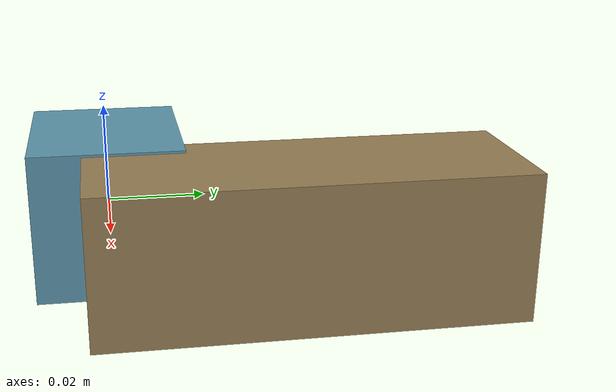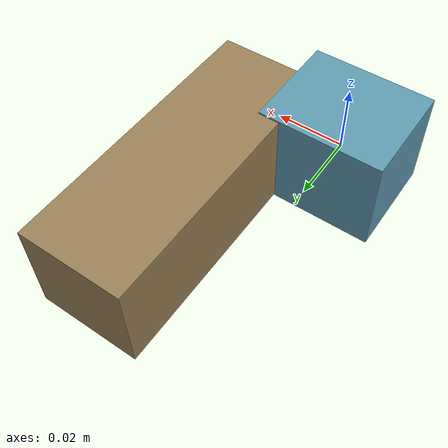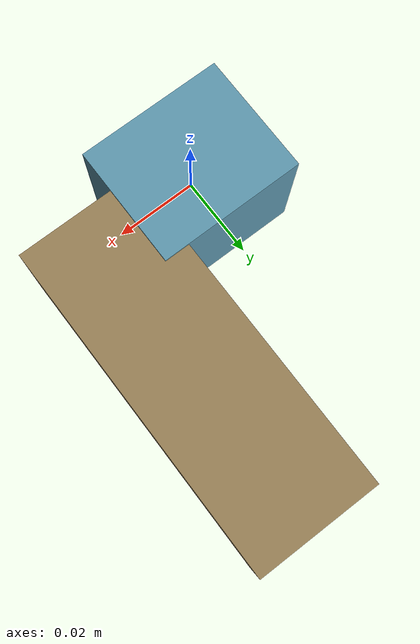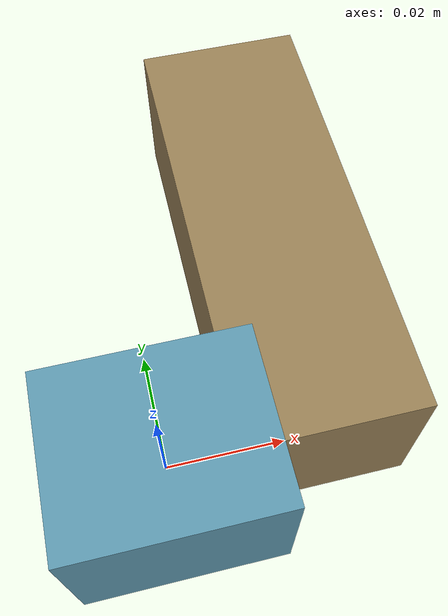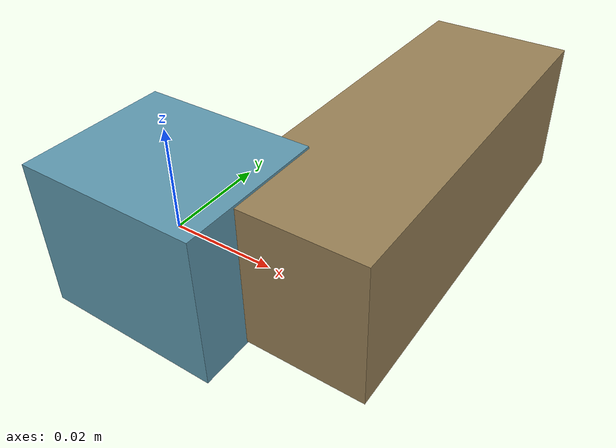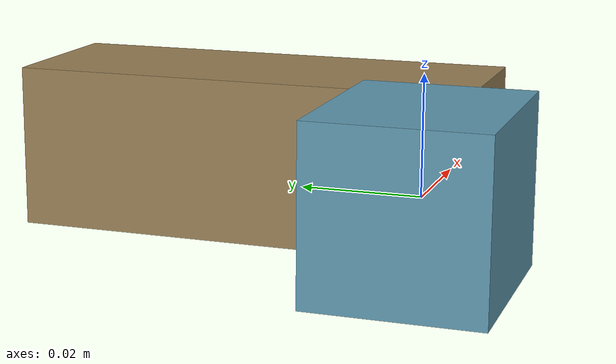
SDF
<sdf version="1.4"><world name="default"><model name="object0"><link name="link1"><pose>0 0 0 0 0 0</pose><inertial><pose>0 0 0 0 0 0</pose><mass>0.0193829483688589</mass><inertia><ixx>2.9074422553288347e-06</ixx><ixy>0</ixy><iyy>3.5348105942499667e-06</iyy><ixz>0</ixz><iyz>0</iyz><izz>3.5348105942499667e-06</izz></inertia></inertial><visual name="link1_visual"><pose>0 0  0 0 0 0</pose><geometry><box><size>0.03589434883122018 0.03 0.03</size></box></geometry><material><diffuse>0.37095483501877097 0.6015061567761504 0.689036494847624 1</diffuse></material></visual><collision><pose>0 0  0 0 0 0</pose><geometry><box><size>0.03589434883122018 0.03 0.03</size></box></geometry></collision></link><link name="link2"><pose>0.026748328341978506 0.03628570218883337 0 0 0 0</pose><inertial><pose>0 0 0 0 0 0</pose><mass>0.044335043852751166</mass><inertia><ixx>2.801135144197724e-05</ixx><ixy>0</ixy><iyy>6.4322759456366474e-06</iyy><ixz>0</ixz><iyz>0</iyz><izz>2.8229332074253265e-05</izz></inertia></inertial><visual name="link2_visual"><pose>0 0  0 0 0 0</pose><geometry><box><size>0.03 0.08210193306065032 0.028999999999999998</size></box></geometry><material><diffuse>0.5993745151971277 0.5056423605183975 0.3383936552266411 1</diffuse></material></visual><collision><pose>0 0  0 0 0 0</pose><geometry><box><size>0.03 0.08210193306065032 0.028999999999999998</size></box></geometry></collision></link><joint name="link_joint_0" type="fixed"><parent>link1</parent><child>link2</child><pose>0 0 0 0 0 0</pose><axis><xyz>0 0 1</xyz></axis></joint></model></world></sdf>
